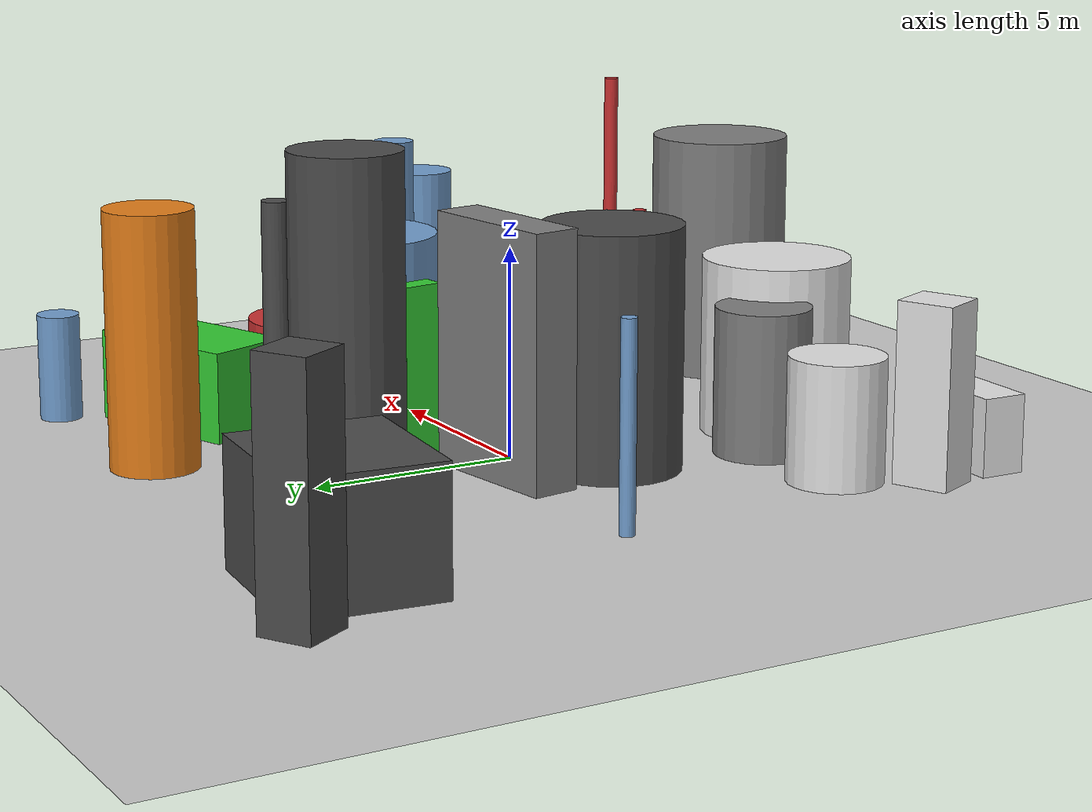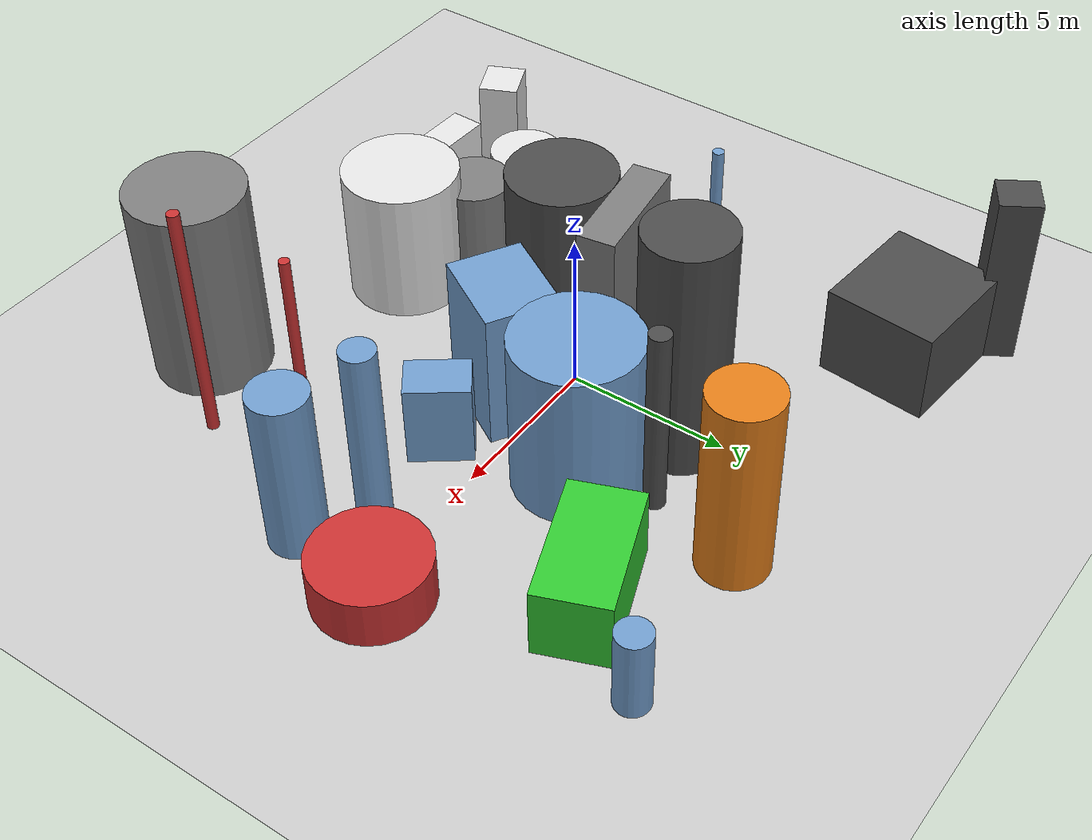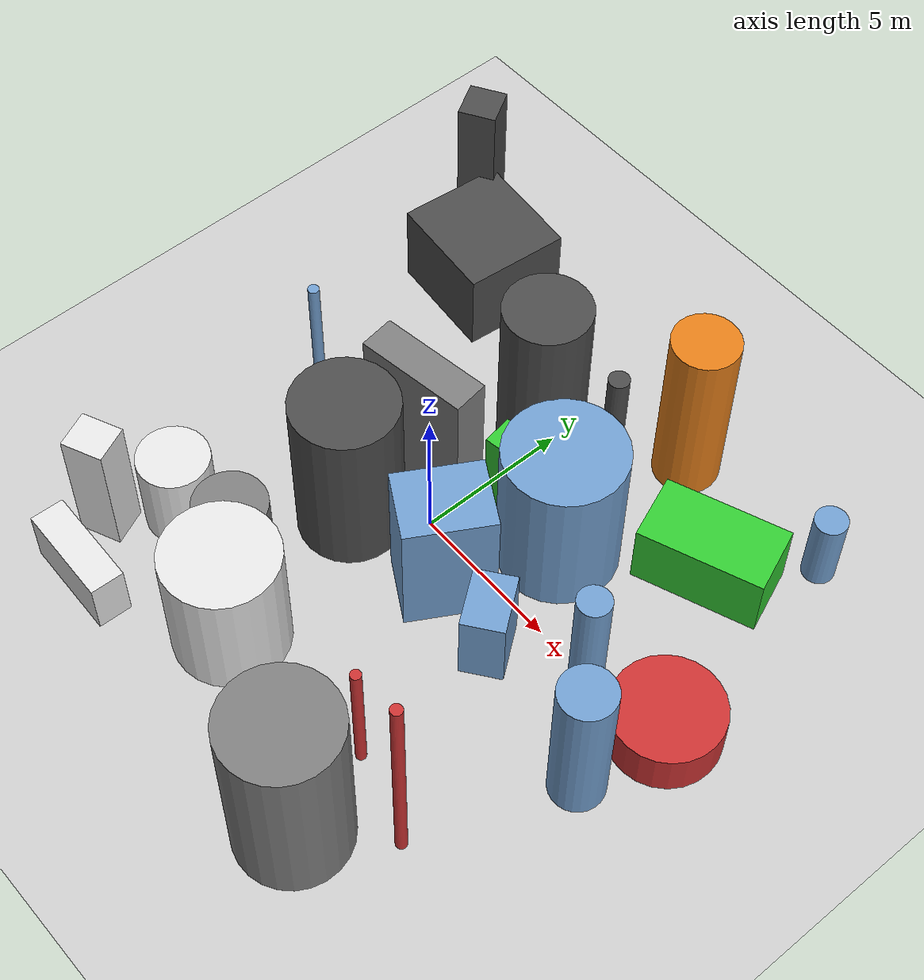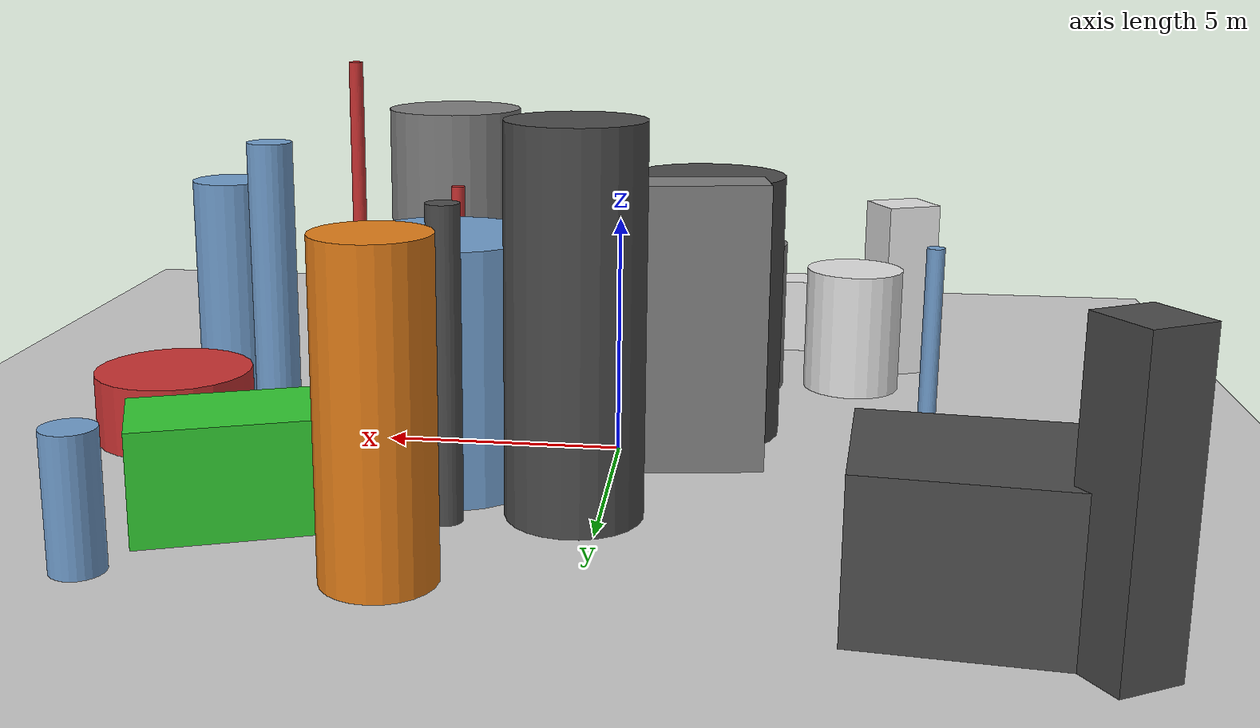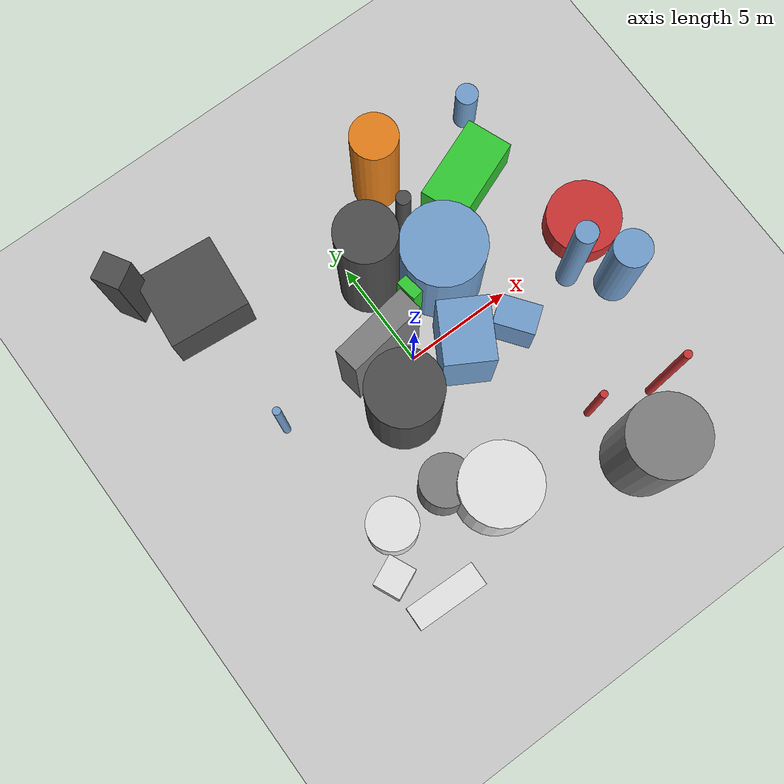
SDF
<?xml version='1.0'?>
<sdf version='1.6'>
  <world name='default'>
    <!-- Sun light -->
    <light name='sun' type='directional'>
      <cast_shadows>1</cast_shadows>
      <pose>0 0 10 0 0 0</pose>
      <diffuse>0.8 0.8 0.8 1</diffuse>
      <specular>0.2 0.2 0.2 1</specular>
      <attenuation>
        <range>1000</range>
        <constant>0.9</constant>
        <linear>0.01</linear>
        <quadratic>0.001</quadratic>
      </attenuation>
      <direction>-0.5 0.1 -0.9</direction>
    </light>

    <!-- Ground plane -->
    <model name='ground_plane'>
      <static>1</static>
      <link name='link'>
        <collision name='collision'>
          <geometry>
            <plane>
              <normal>0 0 1</normal>
              <size>100 100</size>
            </plane>
          </geometry>
          <surface>
            <contact>
              <collide_bitmask>65535</collide_bitmask>
              <ode/>
            </contact>
            <friction>
              <ode>
                <mu>100</mu>
                <mu2>50</mu2>
              </ode>
              <torsional><ode/></torsional>
            </friction>
            <bounce/>
          </surface>
          <max_contacts>10</max_contacts>
        </collision>
        <visual name='visual'>
          <cast_shadows>0</cast_shadows>
          <geometry>
            <plane>
              <normal>0 0 1</normal>
              <size>100 100</size>
            </plane>
          </geometry>
          <material>
            <script>
              <uri>file://media/materials/scripts/gazebo.material</uri>
              <n>Gazebo/Grey</n>
            </script>
          </material>
        </visual>
      </link>
    </model>

    <!-- Environment -->
    <magnetic_field>6e-06 2.3e-05 -4.2e-05</magnetic_field>
    <atmosphere type='adiabatic'/>
    <physics name='default_physics' default='0' type='ode'>
      <gravity>0 0 -9.8</gravity>
      <max_step_size>0.004</max_step_size>
      <real_time_factor>1</real_time_factor>
      <real_time_update_rate>250</real_time_update_rate>
    </physics>
    <scene>
      <ambient>0.4 0.4 0.4 1</ambient>
      <background>0.7 0.7 0.7 1</background>
      <shadows>1</shadows>
    </scene>
    <wind/>
    <spherical_coordinates>
      <surface_model>EARTH_WGS84</surface_model>
      <latitude_deg>0</latitude_deg>
      <longitude_deg>0</longitude_deg>
      <elevation>0</elevation>
      <heading_deg>0</heading_deg>
    </spherical_coordinates>

    <!-- ============ OBSTACLES (25) ============ -->
    <model name='obs_00'>
      <static>1</static>
      <link name='link'>
        <visual name='visual'>
          <geometry>
            <box>
              <size>1.3500 1.2117 4.2335</size>
            </box>
          </geometry>
          <material>
            <script>
              <n>Gazebo/White</n>
              <uri>file://media/materials/scripts/gazebo.material</uri>
            </script>
            <ambient>0.9 0.9 0.9 1</ambient>
          </material>
        </visual>
        <collision name='collision'>
          <geometry>
            <box>
              <size>1.3500 1.2117 4.2335</size>
            </box>
          </geometry>
          <max_contacts>10</max_contacts>
          <surface>
            <contact><ode/></contact>
            <bounce/>
            <friction>
              <ode><mu>1</mu><mu2>1</mu2></ode>
              <torsional><ode/></torsional>
            </friction>
          </surface>
        </collision>
      </link>
      <pose>-6.4004 -7.2914 2.1168 0 0 0.4213</pose>
    </model>

    <model name='obs_01'>
      <static>1</static>
      <link name='link'>
        <visual name='visual'>
          <geometry>
            <cylinder>
              <radius>0.3211</radius>
              <length>6.0721</length>
            </cylinder>
          </geometry>
          <material>
            <script>
              <n>Gazebo/DarkGrey</n>
              <uri>file://media/materials/scripts/gazebo.material</uri>
            </script>
            <ambient>0.3 0.3 0.3 1</ambient>
          </material>
        </visual>
        <collision name='collision'>
          <geometry>
            <cylinder>
              <radius>0.3211</radius>
              <length>6.0721</length>
            </cylinder>
          </geometry>
          <max_contacts>10</max_contacts>
          <surface>
            <contact><ode/></contact>
            <bounce/>
            <friction>
              <ode><mu>1</mu><mu2>1</mu2></ode>
              <torsional><ode/></torsional>
            </friction>
          </surface>
        </collision>
      </link>
      <pose>2.8305 4.5858 3.0360 0 0 2.6613</pose>
    </model>

    <model name='obs_02'>
      <static>1</static>
      <link name='link'>
        <visual name='visual'>
          <geometry>
            <cylinder>
              <radius>0.8478</radius>
              <length>5.2348</length>
            </cylinder>
          </geometry>
          <material>
            <script>
              <n>Gazebo/Blue</n>
              <uri>file://media/materials/scripts/gazebo.material</uri>
            </script>
            <ambient>0.447 0.624 0.812 1</ambient>
          </material>
        </visual>
        <collision name='collision'>
          <geometry>
            <cylinder>
              <radius>0.8478</radius>
              <length>5.2348</length>
            </cylinder>
          </geometry>
          <max_contacts>10</max_contacts>
          <surface>
            <contact><ode/></contact>
            <bounce/>
            <friction>
              <ode><mu>1</mu><mu2>1</mu2></ode>
              <torsional><ode/></torsional>
            </friction>
          </surface>
        </collision>
      </link>
      <pose>9.2757 -2.5108 2.6174 0 0 0.1619</pose>
    </model>

    <model name='obs_03'>
      <static>1</static>
      <link name='link'>
        <visual name='visual'>
          <geometry>
            <cylinder>
              <radius>0.4981</radius>
              <length>6.3319</length>
            </cylinder>
          </geometry>
          <material>
            <script>
              <n>Gazebo/Blue</n>
              <uri>file://media/materials/scripts/gazebo.material</uri>
            </script>
            <ambient>0.447 0.624 0.812 1</ambient>
          </material>
        </visual>
        <collision name='collision'>
          <geometry>
            <cylinder>
              <radius>0.4981</radius>
              <length>6.3319</length>
            </cylinder>
          </geometry>
          <max_contacts>10</max_contacts>
          <surface>
            <contact><ode/></contact>
            <bounce/>
            <friction>
              <ode><mu>1</mu><mu2>1</mu2></ode>
              <torsional><ode/></torsional>
            </friction>
          </surface>
        </collision>
      </link>
      <pose>7.8267 -1.0293 3.1659 0 0 2.7446</pose>
    </model>

    <model name='obs_04'>
      <static>1</static>
      <link name='link'>
        <visual name='visual'>
          <geometry>
            <box>
              <size>1.2596 1.2311 5.5352</size>
            </box>
          </geometry>
          <material>
            <script>
              <n>Gazebo/DarkGrey</n>
              <uri>file://media/materials/scripts/gazebo.material</uri>
            </script>
            <ambient>0.3 0.3 0.3 1</ambient>
          </material>
        </visual>
        <collision name='collision'>
          <geometry>
            <box>
              <size>1.2596 1.2311 5.5352</size>
            </box>
          </geometry>
          <max_contacts>10</max_contacts>
          <surface>
            <contact><ode/></contact>
            <bounce/>
            <friction>
              <ode><mu>1</mu><mu2>1</mu2></ode>
              <torsional><ode/></torsional>
            </friction>
          </surface>
        </collision>
      </link>
      <pose>-8.3950 9.2829 2.7676 0 0 2.1094</pose>
    </model>

    <model name='obs_05'>
      <static>1</static>
      <link name='link'>
        <visual name='visual'>
          <geometry>
            <cylinder>
              <radius>0.1784</radius>
              <length>7.5601</length>
            </cylinder>
          </geometry>
          <material>
            <script>
              <n>Gazebo/Red</n>
              <uri>file://media/materials/scripts/gazebo.material</uri>
            </script>
            <ambient>0.8 0.2 0.2 1</ambient>
          </material>
        </visual>
        <collision name='collision'>
          <geometry>
            <cylinder>
              <radius>0.1784</radius>
              <length>7.5601</length>
            </cylinder>
          </geometry>
          <max_contacts>10</max_contacts>
          <surface>
            <contact><ode/></contact>
            <bounce/>
            <friction>
              <ode><mu>1</mu><mu2>1</mu2></ode>
              <torsional><ode/></torsional>
            </friction>
          </surface>
        </collision>
      </link>
      <pose>7.4911 -7.3402 3.7801 0 0 3.0066</pose>
    </model>

    <model name='obs_06'>
      <static>1</static>
      <link name='link'>
        <visual name='visual'>
          <geometry>
            <box>
              <size>3.9985 2.1762 2.2130</size>
            </box>
          </geometry>
          <material>
            <script>
              <n>Gazebo/Green</n>
              <uri>file://media/materials/scripts/gazebo.material</uri>
            </script>
            <ambient>0.2 0.8 0.2 1</ambient>
          </material>
        </visual>
        <collision name='collision'>
          <geometry>
            <box>
              <size>3.9985 2.1762 2.2130</size>
            </box>
          </geometry>
          <max_contacts>10</max_contacts>
          <surface>
            <contact><ode/></contact>
            <bounce/>
            <friction>
              <ode><mu>1</mu><mu2>1</mu2></ode>
              <torsional><ode/></torsional>
            </friction>
          </surface>
        </collision>
      </link>
      <pose>6.6964 5.1236 1.1065 0 0 0.3686</pose>
    </model>

    <model name='obs_07'>
      <static>1</static>
      <link name='link'>
        <visual name='visual'>
          <geometry>
            <box>
              <size>1.8882 1.3377 2.6081</size>
            </box>
          </geometry>
          <material>
            <script>
              <n>Gazebo/Blue</n>
              <uri>file://media/materials/scripts/gazebo.material</uri>
            </script>
            <ambient>0.447 0.624 0.812 1</ambient>
          </material>
        </visual>
        <collision name='collision'>
          <geometry>
            <box>
              <size>1.8882 1.3377 2.6081</size>
            </box>
          </geometry>
          <max_contacts>10</max_contacts>
          <surface>
            <contact><ode/></contact>
            <bounce/>
            <friction>
              <ode><mu>1</mu><mu2>1</mu2></ode>
              <torsional><ode/></torsional>
            </friction>
          </surface>
        </collision>
      </link>
      <pose>4.3819 -1.5174 1.3040 0 0 2.2110</pose>
    </model>

    <model name='obs_08'>
      <static>1</static>
      <link name='link'>
        <visual name='visual'>
          <geometry>
            <cylinder>
              <radius>1.1373</radius>
              <length>3.5148</length>
            </cylinder>
          </geometry>
          <material>
            <script>
              <n>Gazebo/Grey</n>
              <uri>file://media/materials/scripts/gazebo.material</uri>
            </script>
            <ambient>0.5 0.5 0.5 1</ambient>
          </material>
        </visual>
        <collision name='collision'>
          <geometry>
            <cylinder>
              <radius>1.1373</radius>
              <length>3.5148</length>
            </cylinder>
          </geometry>
          <max_contacts>10</max_contacts>
          <surface>
            <contact><ode/></contact>
            <bounce/>
            <friction>
              <ode><mu>1</mu><mu2>1</mu2></ode>
              <torsional><ode/></torsional>
            </friction>
          </surface>
        </collision>
      </link>
      <pose>-2.4145 -5.4067 1.7574 0 0 1.1959</pose>
    </model>

    <model name='obs_09'>
      <static>1</static>
      <link name='link'>
        <visual name='visual'>
          <geometry>
            <cylinder>
              <radius>1.7832</radius>
              <length>4.2620</length>
            </cylinder>
          </geometry>
          <material>
            <script>
              <n>Gazebo/White</n>
              <uri>file://media/materials/scripts/gazebo.material</uri>
            </script>
            <ambient>0.9 0.9 0.9 1</ambient>
          </material>
        </visual>
        <collision name='collision'>
          <geometry>
            <cylinder>
              <radius>1.7832</radius>
              <length>4.2620</length>
            </cylinder>
          </geometry>
          <max_contacts>10</max_contacts>
          <surface>
            <contact><ode/></contact>
            <bounce/>
            <friction>
              <ode><mu>1</mu><mu2>1</mu2></ode>
              <torsional><ode/></torsional>
            </friction>
          </surface>
        </collision>
      </link>
      <pose>-0.7875 -6.8976 2.1310 0 0 1.1299</pose>
    </model>

    <model name='obs_10'>
      <static>1</static>
      <link name='link'>
        <visual name='visual'>
          <geometry>
            <box>
              <size>3.4391 3.7002 2.8535</size>
            </box>
          </geometry>
          <material>
            <script>
              <n>Gazebo/DarkGrey</n>
              <uri>file://media/materials/scripts/gazebo.material</uri>
            </script>
            <ambient>0.3 0.3 0.3 1</ambient>
          </material>
        </visual>
        <collision name='collision'>
          <geometry>
            <box>
              <size>3.4391 3.7002 2.8535</size>
            </box>
          </geometry>
          <max_contacts>10</max_contacts>
          <surface>
            <contact><ode/></contact>
            <bounce/>
            <friction>
              <ode><mu>1</mu><mu2>1</mu2></ode>
              <torsional><ode/></torsional>
            </friction>
          </surface>
        </collision>
      </link>
      <pose>-6.2304 7.5042 1.4268 0 0 1.4749</pose>
    </model>

    <model name='obs_11'>
      <static>1</static>
      <link name='link'>
        <visual name='visual'>
          <geometry>
            <cylinder>
              <radius>1.7486</radius>
              <length>6.1888</length>
            </cylinder>
          </geometry>
          <material>
            <script>
              <n>Gazebo/Grey</n>
              <uri>file://media/materials/scripts/gazebo.material</uri>
            </script>
            <ambient>0.5 0.5 0.5 1</ambient>
          </material>
        </visual>
        <collision name='collision'>
          <geometry>
            <cylinder>
              <radius>1.7486</radius>
              <length>6.1888</length>
            </cylinder>
          </geometry>
          <max_contacts>10</max_contacts>
          <surface>
            <contact><ode/></contact>
            <bounce/>
            <friction>
              <ode><mu>1</mu><mu2>1</mu2></ode>
              <torsional><ode/></torsional>
            </friction>
          </surface>
        </collision>
      </link>
      <pose>5.3098 -9.3557 3.0944 0 0 0.1436</pose>
    </model>

    <model name='obs_12'>
      <static>1</static>
      <link name='link'>
        <visual name='visual'>
          <geometry>
            <cylinder>
              <radius>1.8793</radius>
              <length>5.0540</length>
            </cylinder>
          </geometry>
          <material>
            <script>
              <n>Gazebo/Blue</n>
              <uri>file://media/materials/scripts/gazebo.material</uri>
            </script>
            <ambient>0.447 0.624 0.812 1</ambient>
          </material>
        </visual>
        <collision name='collision'>
          <geometry>
            <cylinder>
              <radius>1.8793</radius>
              <length>5.0540</length>
            </cylinder>
          </geometry>
          <max_contacts>10</max_contacts>
          <surface>
            <contact><ode/></contact>
            <bounce/>
            <friction>
              <ode><mu>1</mu><mu2>1</mu2></ode>
              <torsional><ode/></torsional>
            </friction>
          </surface>
        </collision>
      </link>
      <pose>3.2040 2.2985 2.5270 0 0 0.8192</pose>
    </model>

    <model name='obs_13'>
      <static>1</static>
      <link name='link'>
        <visual name='visual'>
          <geometry>
            <cylinder>
              <radius>0.5130</radius>
              <length>2.6101</length>
            </cylinder>
          </geometry>
          <material>
            <script>
              <n>Gazebo/Blue</n>
              <uri>file://media/materials/scripts/gazebo.material</uri>
            </script>
            <ambient>0.447 0.624 0.812 1</ambient>
          </material>
        </visual>
        <collision name='collision'>
          <geometry>
            <cylinder>
              <radius>0.5130</radius>
              <length>2.6101</length>
            </cylinder>
          </geometry>
          <max_contacts>10</max_contacts>
          <surface>
            <contact><ode/></contact>
            <bounce/>
            <friction>
              <ode><mu>1</mu><mu2>1</mu2></ode>
              <torsional><ode/></torsional>
            </friction>
          </surface>
        </collision>
      </link>
      <pose>8.7248 7.7808 1.3051 0 0 0.9274</pose>
    </model>

    <model name='obs_14'>
      <static>1</static>
      <link name='link'>
        <visual name='visual'>
          <geometry>
            <box>
              <size>2.2476 2.7911 4.4242</size>
            </box>
          </geometry>
          <material>
            <script>
              <n>Gazebo/Blue</n>
              <uri>file://media/materials/scripts/gazebo.material</uri>
            </script>
            <ambient>0.447 0.624 0.812 1</ambient>
          </material>
        </visual>
        <collision name='collision'>
          <geometry>
            <box>
              <size>2.2476 2.7911 4.4242</size>
            </box>
          </geometry>
          <max_contacts>10</max_contacts>
          <surface>
            <contact><ode/></contact>
            <bounce/>
            <friction>
              <ode><mu>1</mu><mu2>1</mu2></ode>
              <torsional><ode/></torsional>
            </friction>
          </surface>
        </collision>
      </link>
      <pose>1.8789 -1.0712 2.2121 0 0 2.6181</pose>
    </model>

    <model name='obs_15'>
      <static>1</static>
      <link name='link'>
        <visual name='visual'>
          <geometry>
            <cylinder>
              <radius>1.0539</radius>
              <length>6.0649</length>
            </cylinder>
          </geometry>
          <material>
            <script>
              <n>Gazebo/Orange</n>
              <uri>file://media/materials/scripts/gazebo.material</uri>
            </script>
            <ambient>0.9 0.5 0.1 1</ambient>
          </material>
        </visual>
        <collision name='collision'>
          <geometry>
            <cylinder>
              <radius>1.0539</radius>
              <length>6.0649</length>
            </cylinder>
          </geometry>
          <max_contacts>10</max_contacts>
          <surface>
            <contact><ode/></contact>
            <bounce/>
            <friction>
              <ode><mu>1</mu><mu2>1</mu2></ode>
              <torsional><ode/></torsional>
            </friction>
          </surface>
        </collision>
      </link>
      <pose>3.4405 7.4442 3.0325 0 0 2.3982</pose>
    </model>

    <model name='obs_16'>
      <static>1</static>
      <link name='link'>
        <visual name='visual'>
          <geometry>
            <box>
              <size>1.0888 3.2824 1.8463</size>
            </box>
          </geometry>
          <material>
            <script>
              <n>Gazebo/White</n>
              <uri>file://media/materials/scripts/gazebo.material</uri>
            </script>
            <ambient>0.9 0.9 0.9 1</ambient>
          </material>
        </visual>
        <collision name='collision'>
          <geometry>
            <box>
              <size>1.0888 3.2824 1.8463</size>
            </box>
          </geometry>
          <max_contacts>10</max_contacts>
          <surface>
            <contact><ode/></contact>
            <bounce/>
            <friction>
              <ode><mu>1</mu><mu2>1</mu2></ode>
              <torsional><ode/></torsional>
            </friction>
          </surface>
        </collision>
      </link>
      <pose>-5.1053 -9.1153 0.9232 0 0 1.5413</pose>
    </model>

    <model name='obs_17'>
      <static>1</static>
      <link name='link'>
        <visual name='visual'>
          <geometry>
            <box>
              <size>1.1442 3.6128 5.9516</size>
            </box>
          </geometry>
          <material>
            <script>
              <n>Gazebo/Grey</n>
              <uri>file://media/materials/scripts/gazebo.material</uri>
            </script>
            <ambient>0.5 0.5 0.5 1</ambient>
          </material>
        </visual>
        <collision name='collision'>
          <geometry>
            <box>
              <size>1.1442 3.6128 5.9516</size>
            </box>
          </geometry>
          <max_contacts>10</max_contacts>
          <surface>
            <contact><ode/></contact>
            <bounce/>
            <friction>
              <ode><mu>1</mu><mu2>1</mu2></ode>
              <torsional><ode/></torsional>
            </friction>
          </surface>
        </collision>
      </link>
      <pose>-1.2207 0.7952 2.9758 0 0 1.7170</pose>
    </model>

    <model name='obs_18'>
      <static>1</static>
      <link name='link'>
        <visual name='visual'>
          <geometry>
            <cylinder>
              <radius>1.7023</radius>
              <length>1.5203</length>
            </cylinder>
          </geometry>
          <material>
            <script>
              <n>Gazebo/Red</n>
              <uri>file://media/materials/scripts/gazebo.material</uri>
            </script>
            <ambient>0.8 0.2 0.2 1</ambient>
          </material>
        </visual>
        <collision name='collision'>
          <geometry>
            <cylinder>
              <radius>1.7023</radius>
              <length>1.5203</length>
            </cylinder>
          </geometry>
          <max_contacts>10</max_contacts>
          <surface>
            <contact><ode/></contact>
            <bounce/>
            <friction>
              <ode><mu>1</mu><mu2>1</mu2></ode>
              <torsional><ode/></torsional>
            </friction>
          </surface>
        </collision>
      </link>
      <pose>9.7139 0.4250 0.7602 0 0 1.6460</pose>
    </model>

    <model name='obs_19'>
      <static>1</static>
      <link name='link'>
        <visual name='visual'>
          <geometry>
            <box>
              <size>0.5223 0.9812 4.1535</size>
            </box>
          </geometry>
          <material>
            <script>
              <n>Gazebo/Green</n>
              <uri>file://media/materials/scripts/gazebo.material</uri>
            </script>
            <ambient>0.2 0.8 0.2 1</ambient>
          </material>
        </visual>
        <collision name='collision'>
          <geometry>
            <box>
              <size>0.5223 0.9812 4.1535</size>
            </box>
          </geometry>
          <max_contacts>10</max_contacts>
          <surface>
            <contact><ode/></contact>
            <bounce/>
            <friction>
              <ode><mu>1</mu><mu2>1</mu2></ode>
              <torsional><ode/></torsional>
            </friction>
          </surface>
        </collision>
      </link>
      <pose>1.1344 1.8333 2.0768 0 0 0.1524</pose>
    </model>

    <model name='obs_20'>
      <static>1</static>
      <link name='link'>
        <visual name='visual'>
          <geometry>
            <cylinder>
              <radius>0.1669</radius>
              <length>4.5401</length>
            </cylinder>
          </geometry>
          <material>
            <script>
              <n>Gazebo/Red</n>
              <uri>file://media/materials/scripts/gazebo.material</uri>
            </script>
            <ambient>0.8 0.2 0.2 1</ambient>
          </material>
        </visual>
        <collision name='collision'>
          <geometry>
            <cylinder>
              <radius>0.1669</radius>
              <length>4.5401</length>
            </cylinder>
          </geometry>
          <max_contacts>10</max_contacts>
          <surface>
            <contact><ode/></contact>
            <bounce/>
            <friction>
              <ode><mu>1</mu><mu2>1</mu2></ode>
              <torsional><ode/></torsional>
            </friction>
          </surface>
        </collision>
      </link>
      <pose>4.7042 -6.4973 2.2701 0 0 2.2216</pose>
    </model>

    <model name='obs_21'>
      <static>1</static>
      <link name='link'>
        <visual name='visual'>
          <geometry>
            <cylinder>
              <radius>1.3298</radius>
              <length>7.5373</length>
            </cylinder>
          </geometry>
          <material>
            <script>
              <n>Gazebo/DarkGrey</n>
              <uri>file://media/materials/scripts/gazebo.material</uri>
            </script>
            <ambient>0.3 0.3 0.3 1</ambient>
          </material>
        </visual>
        <collision name='collision'>
          <geometry>
            <cylinder>
              <radius>1.3298</radius>
              <length>7.5373</length>
            </cylinder>
          </geometry>
          <max_contacts>10</max_contacts>
          <surface>
            <contact><ode/></contact>
            <bounce/>
            <friction>
              <ode><mu>1</mu><mu2>1</mu2></ode>
              <torsional><ode/></torsional>
            </friction>
          </surface>
        </collision>
      </link>
      <pose>0.4893 3.9262 3.7687 0 0 0.1899</pose>
    </model>

    <model name='obs_22'>
      <static>1</static>
      <link name='link'>
        <visual name='visual'>
          <geometry>
            <cylinder>
              <radius>0.1791</radius>
              <length>4.7255</length>
            </cylinder>
          </geometry>
          <material>
            <script>
              <n>Gazebo/Blue</n>
              <uri>file://media/materials/scripts/gazebo.material</uri>
            </script>
            <ambient>0.447 0.624 0.812 1</ambient>
          </material>
        </visual>
        <collision name='collision'>
          <geometry>
            <cylinder>
              <radius>0.1791</radius>
              <length>4.7255</length>
            </cylinder>
          </geometry>
          <max_contacts>10</max_contacts>
          <surface>
            <contact><ode/></contact>
            <bounce/>
            <friction>
              <ode><mu>1</mu><mu2>1</mu2></ode>
              <torsional><ode/></torsional>
            </friction>
          </surface>
        </collision>
      </link>
      <pose>-6.3224 0.7586 2.3627 0 0 2.0712</pose>
    </model>

    <model name='obs_23'>
      <static>1</static>
      <link name='link'>
        <visual name='visual'>
          <geometry>
            <cylinder>
              <radius>1.1294</radius>
              <length>2.9232</length>
            </cylinder>
          </geometry>
          <material>
            <script>
              <n>Gazebo/White</n>
              <uri>file://media/materials/scripts/gazebo.material</uri>
            </script>
            <ambient>0.9 0.9 0.9 1</ambient>
          </material>
        </visual>
        <collision name='collision'>
          <geometry>
            <cylinder>
              <radius>1.1294</radius>
              <length>2.9232</length>
            </cylinder>
          </geometry>
          <max_contacts>10</max_contacts>
          <surface>
            <contact><ode/></contact>
            <bounce/>
            <friction>
              <ode><mu>1</mu><mu2>1</mu2></ode>
              <torsional><ode/></torsional>
            </friction>
          </surface>
        </collision>
      </link>
      <pose>-5.1806 -5.4931 1.4616 0 0 0.0372</pose>
    </model>

    <model name='obs_24'>
      <static>1</static>
      <link name='link'>
        <visual name='visual'>
          <geometry>
            <cylinder>
              <radius>1.6543</radius>
              <length>5.7182</length>
            </cylinder>
          </geometry>
          <material>
            <script>
              <n>Gazebo/DarkGrey</n>
              <uri>file://media/materials/scripts/gazebo.material</uri>
            </script>
            <ambient>0.3 0.3 0.3 1</ambient>
          </material>
        </visual>
        <collision name='collision'>
          <geometry>
            <cylinder>
              <radius>1.6543</radius>
              <length>5.7182</length>
            </cylinder>
          </geometry>
          <max_contacts>10</max_contacts>
          <surface>
            <contact><ode/></contact>
            <bounce/>
            <friction>
              <ode><mu>1</mu><mu2>1</mu2></ode>
              <torsional><ode/></torsional>
            </friction>
          </surface>
        </collision>
      </link>
      <pose>-1.7465 -1.6698 2.8591 0 0 0.0539</pose>
    </model>

    <!-- GUI camera -->
    <gui fullscreen='0'>
      <camera name='user_camera'>
        <pose>-15 0 18 0 0.85 0.15</pose>
        <view_controller>orbit</view_controller>
        <projection_type>perspective</projection_type>
      </camera>
    </gui>
  </world>
</sdf>
